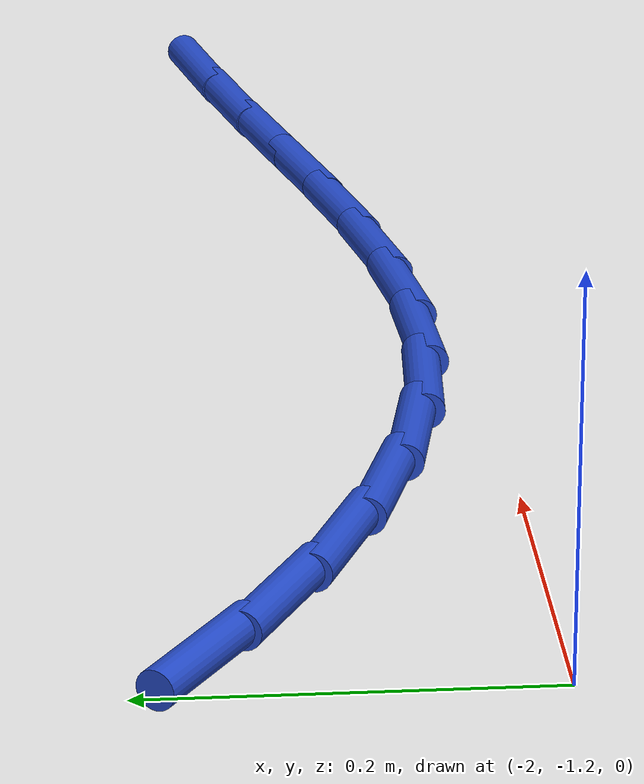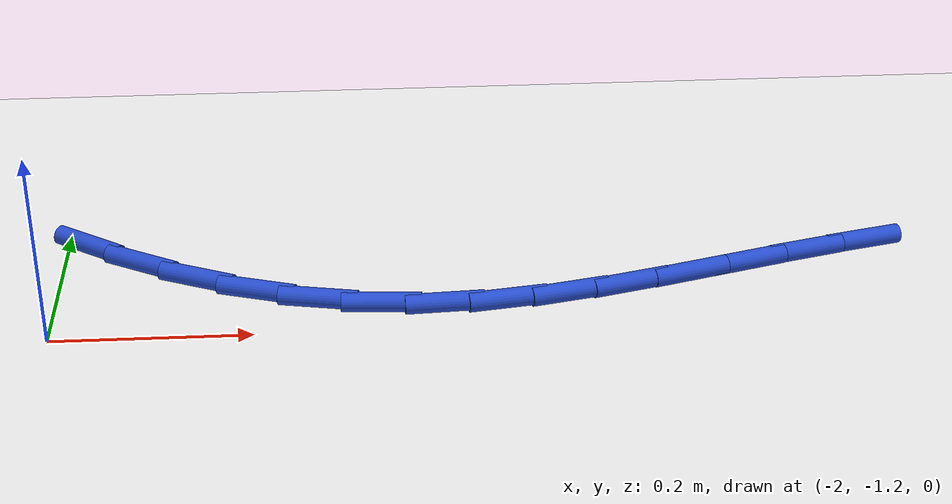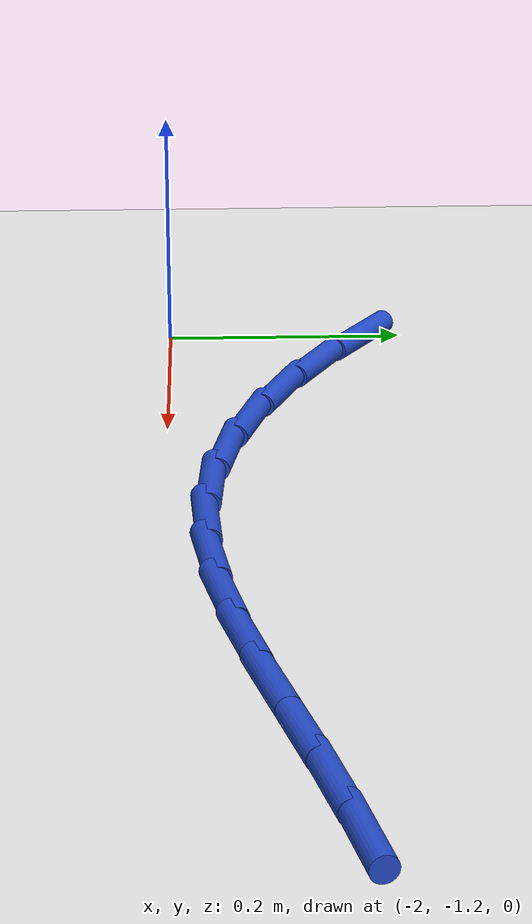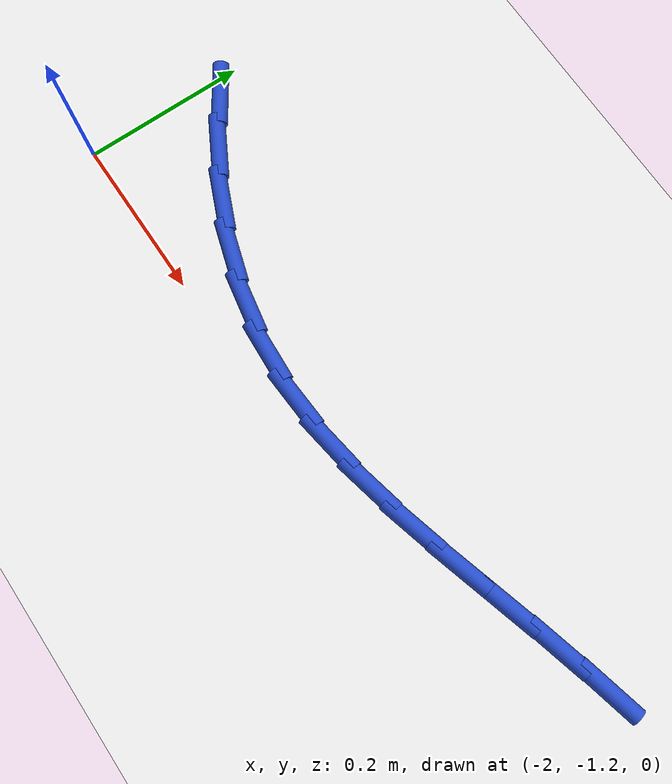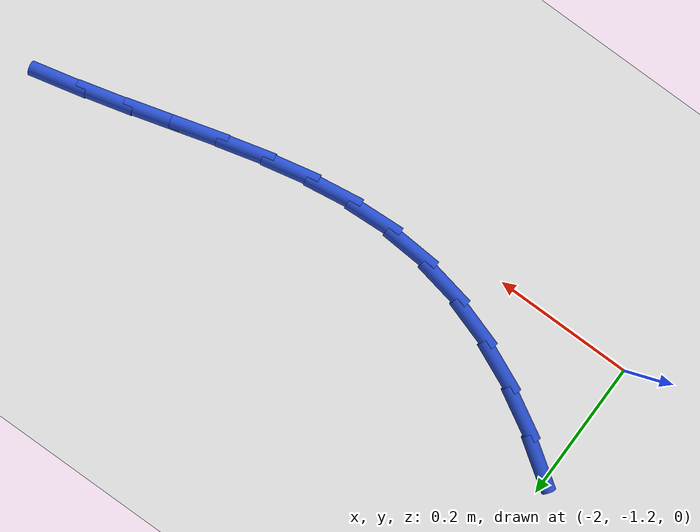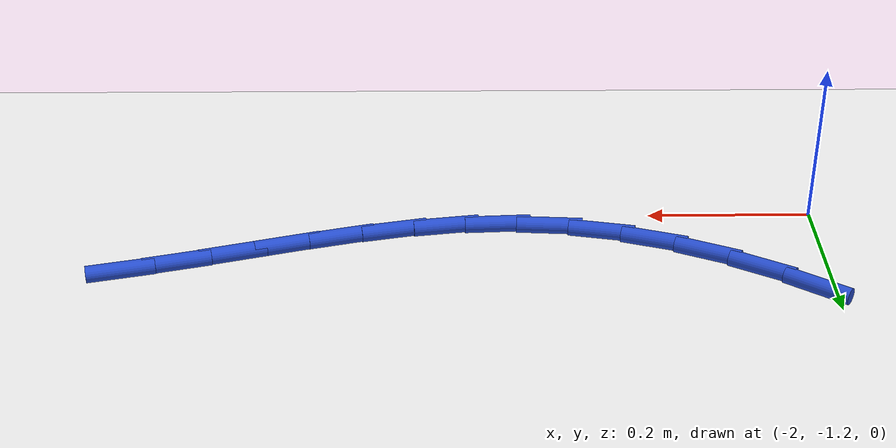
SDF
<sdf version="1.6">
 <world name="default">
  <model name="ground_plane">
   <static>1</static>
   <link name="link">
    <collision name="collision">
     <geometry><plane><normal>0 0 1</normal><size>100 100</size></plane></geometry>
     <surface><friction><ode><mu>100</mu><mu2>50</mu2></ode></friction></surface>
    </collision>
    <visual name="visual">
     <cast_shadows>0</cast_shadows>
     <geometry><plane><normal>0 0 1</normal><size>100 100</size></plane></geometry>
     <material>
      <script><uri>file://media/materials/scripts/gazebo.material</uri><name>Gazebo/WhiteGlow</name></script>
     </material>
    </visual>
   </link>
  </model>
  <model name="line">
   <link name="link_70">
    <pose>-1.976939607187398 -1.0344199185748537 0.01 0 1.57 -0.5967135112187443</pose>
    <collision name="collision">
     <geometry><cylinder><radius>0.01</radius><length>0.08</length></cylinder></geometry>
    </collision>
    <visual name="visual">
     <material>
      <script><name>Gazebo/Blue</name><uri>file://media/materials/scripts/gazebo.material</uri></script>
     </material>
     <geometry><cylinder><radius>0.01</radius><length>0.08</length></cylinder></geometry>
    </visual>
   </link>
   <link name="link_71">
    <pose>-1.9198779347539565 -1.0731832197824136 0.01 0 1.57 -0.508170024833284</pose>
    <collision name="collision">
     <geometry><cylinder><radius>0.01</radius><length>0.08</length></cylinder></geometry>
    </collision>
    <visual name="visual">
     <material>
      <script><name>Gazebo/Blue</name><uri>file://media/materials/scripts/gazebo.material</uri></script>
     </material>
     <geometry><cylinder><radius>0.01</radius><length>0.08</length></cylinder></geometry>
    </visual>
   </link>
   <link name="link_72">
    <pose>-1.8606517066807076 -1.1061697785089049 0.01 0 1.57 -0.41187689679335254</pose>
    <collision name="collision">
     <geometry><cylinder><radius>0.01</radius><length>0.08</length></cylinder></geometry>
    </collision>
    <visual name="visual">
     <material>
      <script><name>Gazebo/Blue</name><uri>file://media/materials/scripts/gazebo.material</uri></script>
     </material>
     <geometry><cylinder><radius>0.01</radius><length>0.08</length></cylinder></geometry>
    </visual>
   </link>
   <link name="link_73">
    <pose>-1.7997580700862001 -1.1327720453751238 0.01 0 1.57 -0.3060444221752807</pose>
    <collision name="collision">
     <geometry><cylinder><radius>0.01</radius><length>0.08</length></cylinder></geometry>
    </collision>
    <visual name="visual">
     <material>
      <script><name>Gazebo/Blue</name><uri>file://media/materials/scripts/gazebo.material</uri></script>
     </material>
     <geometry><cylinder><radius>0.01</radius><length>0.08</length></cylinder></geometry>
    </visual>
   </link>
   <link name="link_74">
    <pose>-1.7376941720889811 -1.1523824710018689 0.01 0 1.57 -0.18916157527927305</pose>
    <collision name="collision">
     <geometry><cylinder><radius>0.01</radius><length>0.08</length></cylinder></geometry>
    </collision>
    <visual name="visual">
     <material>
      <script><name>Gazebo/Blue</name><uri>file://media/materials/scripts/gazebo.material</uri></script>
     </material>
     <geometry><cylinder><radius>0.01</radius><length>0.08</length></cylinder></geometry>
    </visual>
   </link>
   <link name="link_75">
    <pose>-1.6749571598076 -1.1643935060099362 0.01 0 1.57 -0.06237432904851574</pose>
    <collision name="collision">
     <geometry><cylinder><radius>0.01</radius><length>0.08</length></cylinder></geometry>
    </collision>
    <visual name="visual">
     <material>
      <script><name>Gazebo/Blue</name><uri>file://media/materials/scripts/gazebo.material</uri></script>
     </material>
     <geometry><cylinder><radius>0.01</radius><length>0.08</length></cylinder></geometry>
    </visual>
   </link>
   <link name="link_76">
    <pose>-1.612012757707312 -1.168324720385552 0.01 0 1.57 0.05371931667955619</pose>
    <collision name="collision">
     <geometry><cylinder><radius>0.01</radius><length>0.08</length></cylinder></geometry>
    </collision>
    <visual name="visual">
     <material>
      <script><name>Gazebo/Blue</name><uri>file://media/materials/scripts/gazebo.material</uri></script>
     </material>
     <geometry><cylinder><radius>0.01</radius><length>0.08</length></cylinder></geometry>
    </visual>
   </link>
   <link name="link_77">
    <pose>-1.549019721005485 -1.1649375186486337 0.01 0 1.57 0.14553829555887418</pose>
    <collision name="collision">
     <geometry><cylinder><radius>0.01</radius><length>0.08</length></cylinder></geometry>
    </collision>
    <visual name="visual">
     <material>
      <script><name>Gazebo/Blue</name><uri>file://media/materials/scripts/gazebo.material</uri></script>
     </material>
     <geometry><cylinder><radius>0.01</radius><length>0.08</length></cylinder></geometry>
    </visual>
   </link>
   <link name="link_78">
    <pose>-1.4859633400630343 -1.155695051994386 0.01 0 1.57 0.21256797098093366</pose>
    <collision name="collision">
     <geometry><cylinder><radius>0.01</radius><length>0.08</length></cylinder></geometry>
    </collision>
    <visual name="visual">
     <material>
      <script><name>Gazebo/Blue</name><uri>file://media/materials/scripts/gazebo.material</uri></script>
     </material>
     <geometry><cylinder><radius>0.01</radius><length>0.08</length></cylinder></geometry>
    </visual>
   </link>
   <link name="link_79">
    <pose>-1.4228269418427624 -1.1420684144839481 0.01 0 1.57 0.25583564635776407</pose>
    <collision name="collision">
     <geometry><cylinder><radius>0.01</radius><length>0.08</length></cylinder></geometry>
    </collision>
    <visual name="visual">
     <material>
      <script><name>Gazebo/Blue</name><uri>file://media/materials/scripts/gazebo.material</uri></script>
     </material>
     <geometry><cylinder><radius>0.01</radius><length>0.08</length></cylinder></geometry>
    </visual>
   </link>
   <link name="link_80">
    <pose>-1.3595938533074698 -1.12552870017846 0.01 0 1.57 0.2765870113333932</pose>
    <collision name="collision">
     <geometry><cylinder><radius>0.01</radius><length>0.08</length></cylinder></geometry>
    </collision>
    <visual name="visual">
     <material>
      <script><name>Gazebo/Blue</name><uri>file://media/materials/scripts/gazebo.material</uri></script>
     </material>
     <geometry><cylinder><radius>0.01</radius><length>0.08</length></cylinder></geometry>
    </visual>
   </link>
   <link name="link_81">
    <pose>-1.2962474014199599 -1.1075470031390608 0.01 0 1.57 0.2756241802319253</pose>
    <collision name="collision">
     <geometry><cylinder><radius>0.01</radius><length>0.08</length></cylinder></geometry>
    </collision>
    <visual name="visual">
     <material>
      <script><name>Gazebo/Blue</name><uri>file://media/materials/scripts/gazebo.material</uri></script>
     </material>
     <geometry><cylinder><radius>0.01</radius><length>0.08</length></cylinder></geometry>
    </visual>
   </link>
   <link name="link_82">
    <pose>-1.2327709131430333 -1.0895944174268903 0.01 0 1.57 0.2551139005044639</pose>
    <collision name="collision">
     <geometry><cylinder><radius>0.01</radius><length>0.08</length></cylinder></geometry>
    </collision>
    <visual name="visual">
     <material>
      <script><name>Gazebo/Blue</name><uri>file://media/materials/scripts/gazebo.material</uri></script>
     </material>
     <geometry><cylinder><radius>0.01</radius><length>0.08</length></cylinder></geometry>
    </visual>
   </link>
   <link name="link_83">
    <pose>-1.1691583576249582 -1.0730044909698575 0.01 0 1.57 0.23336175401755252</pose>
    <collision name="collision">
     <geometry><cylinder><radius>0.01</radius><length>0.08</length></cylinder></geometry>
    </collision>
    <visual name="visual">
     <material>
      <script><name>Gazebo/Blue</name><uri>file://media/materials/scripts/gazebo.material</uri></script>
     </material>
     <geometry><cylinder><radius>0.01</radius><length>0.08</length></cylinder></geometry>
    </visual>
   </link>
  </model>
 </world>
</sdf>
